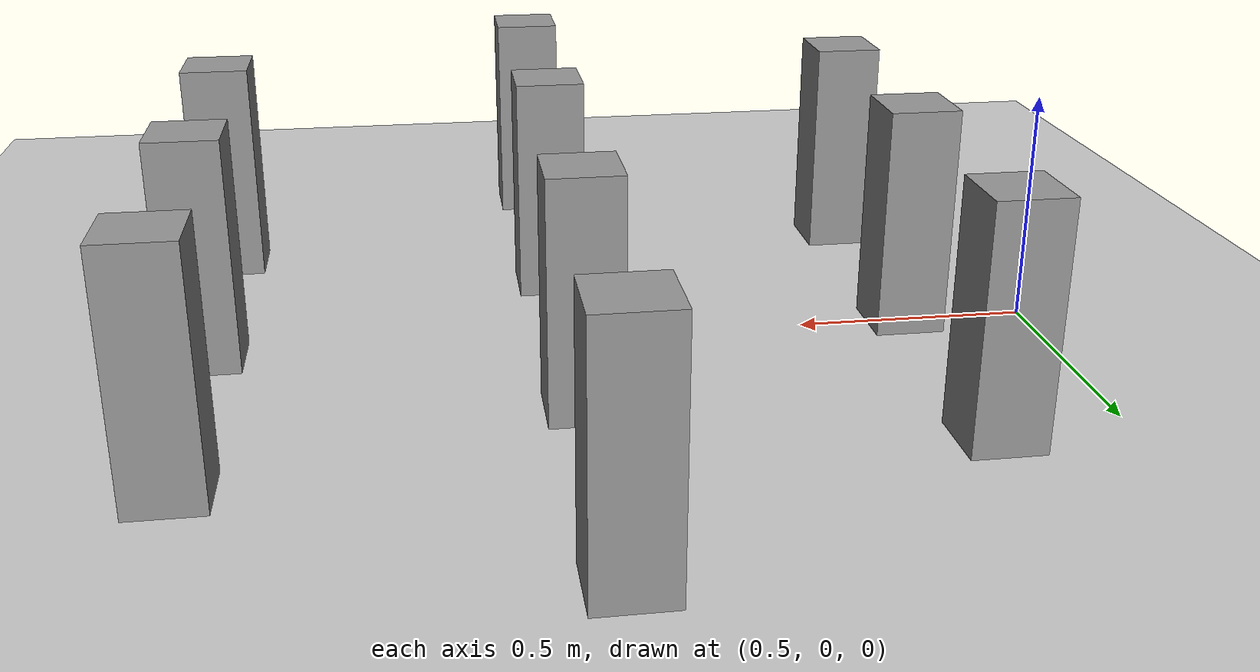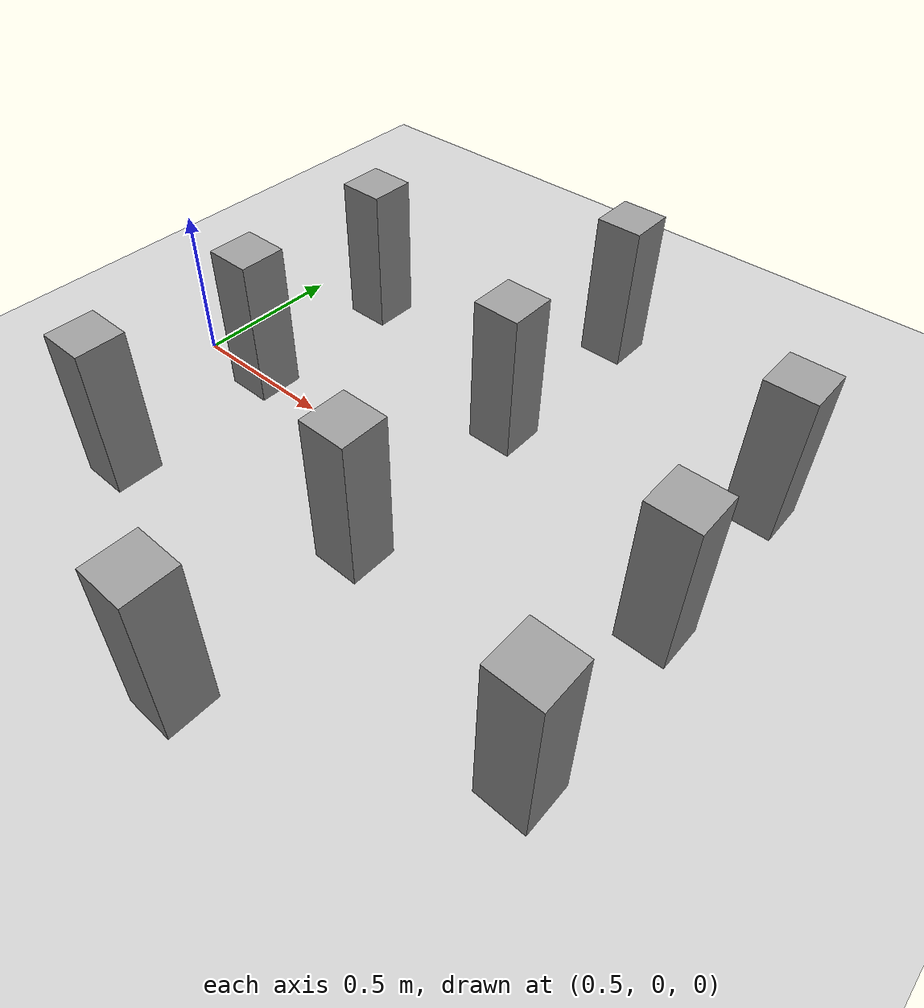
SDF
<sdf version="1.7">
 <world name="default">
  <light name="sun" type="directional">
   <pose>0 0 10 0 -0 0</pose>
   <diffuse>0.8 0.8 0.8 1</diffuse>
   <specular>0.2 0.2 0.2 1</specular>
   <attenuation>
    <range>1000</range>
    <constant>0.9</constant>
    <linear>0.01</linear>
    <quadratic>0.001</quadratic>
   </attenuation>
   <direction>-0.5 0.1 -0.9</direction>
   <spot><inner_angle>0</inner_angle><outer_angle>0</outer_angle><falloff>0</falloff></spot>
  </light>
  <model name="ground_plane">
   <static>1</static>
   <link name="link">
    <collision name="collision">
     <geometry><plane><normal>0 0 1</normal><size>100 100</size></plane></geometry>
     <surface><friction><ode><mu>100</mu><mu2>50</mu2></ode></friction></surface>
    </collision>
    <visual name="visual">
     <cast_shadows>0</cast_shadows>
     <geometry><plane><normal>0 0 1</normal><size>100 100</size></plane></geometry>
     <material>
      <script><uri>file://media/materials/scripts/gazebo.material</uri><name>Gazebo/Grey</name></script>
     </material>
    </visual>
   </link>
  </model>
  <gravity>0 0 -9.8</gravity>
  <magnetic_field>6e-06 2.3e-05 -4.2e-05</magnetic_field>
  <atmosphere type="adiabatic"/>
  <physics type="ode">
   <max_step_size>0.001</max_step_size>
   <real_time_factor>1</real_time_factor>
   <real_time_update_rate>1000</real_time_update_rate>
  </physics>
  <scene><ambient>0.4 0.4 0.4 1</ambient><background>0.7 0.7 0.7 1</background><shadows>1</shadows></scene>
  <spherical_coordinates>
   <surface_model>EARTH_WGS84</surface_model>
   <latitude_deg>0</latitude_deg>
   <longitude_deg>0</longitude_deg>
   <elevation>0</elevation>
   <heading_deg>0</heading_deg>
  </spherical_coordinates>
  <model name="Obstacles">
   <link name="link_1">
    <inertial>
     <mass>1</mass>
     <inertia>
      <ixx>0.166667</ixx>
      <ixy>0</ixy>
      <ixz>0</ixz>
      <iyy>0.166667</iyy>
      <iyz>0</iyz>
      <izz>0.166667</izz>
     </inertia>
     <pose>-0.3 0.175 0 0 -0 0</pose>
    </inertial>
    <pose>-1.14167 0.341667 0 0 -0 0</pose>
    <visual name="visual">
     <pose>-0.3 0.175 0 0 -0 0</pose>
     <geometry><box><size>0.15 0.15 0.5</size></box></geometry>
     <material>
      <lighting>1</lighting>
      <script><uri>file://media/materials/scripts/gazebo.material</uri><name>Gazebo/Grey</name></script>
      <shader type="pixel"><normal_map>__default__</normal_map></shader>
      <ambient>0.3 0.3 0.3 1</ambient>
      <diffuse>0.7 0.7 0.7 1</diffuse>
      <specular>0.01 0.01 0.01 1</specular>
      <emissive>0 0 0 1</emissive>
     </material>
    </visual>
    <collision name="collision">
     <max_contacts>0</max_contacts>
     <pose>-0.3 0.175 0 0 -0 0</pose>
     <geometry><box><size>0.15 0.15 0.5</size></box></geometry>
     <surface>
      <friction>
       <ode><mu>1</mu><mu2>1</mu2><fdir1>0 0 0</fdir1><slip1>0</slip1><slip2>0</slip2></ode>
       <torsional>
        <coefficient>1</coefficient>
        <patch_radius>0</patch_radius>
        <surface_radius>0</surface_radius>
        <use_patch_radius>1</use_patch_radius>
        <ode><slip>0</slip></ode>
       </torsional>
      </friction>
      <bounce><restitution_coefficient>0</restitution_coefficient><threshold>1e+06</threshold></bounce>
      <contact>
       <collide_without_contact>0</collide_without_contact>
       <collide_without_contact_bitmask>1</collide_without_contact_bitmask>
       <collide_bitmask>1</collide_bitmask>
       <ode>
        <soft_cfm>0</soft_cfm>
        <soft_erp>0.2</soft_erp>
        <kp>1e+13</kp>
        <kd>1</kd>
        <max_vel>0.01</max_vel>
        <min_depth>0</min_depth>
       </ode>
       <bullet>
        <split_impulse>1</split_impulse>
        <split_impulse_penetration_threshold>-0.01</split_impulse_penetration_threshold>
        <soft_cfm>0</soft_cfm>
        <soft_erp>0.2</soft_erp>
        <kp>1e+13</kp>
        <kd>1</kd>
       </bullet>
      </contact>
     </surface>
    </collision>
   </link>
   <link name="link_1_middle">
    <inertial>
     <mass>1</mass>
     <inertia>
      <ixx>0.166667</ixx>
      <ixy>0</ixy>
      <ixz>0</ixz>
      <iyy>0.166667</iyy>
      <iyz>0</iyz>
      <izz>0.166667</izz>
     </inertia>
     <pose>-0.3 -0.375 0 0 -0 0</pose>
    </inertial>
    <pose>-1.14167 0.341667 0 0 -0 0</pose>
    <visual name="visual">
     <pose>-0.3 -0.375 0 0 -0 0</pose>
     <geometry><box><size>0.15 0.15 0.5</size></box></geometry>
     <material>
      <lighting>1</lighting>
      <script><uri>file://media/materials/scripts/gazebo.material</uri><name>Gazebo/Grey</name></script>
      <shader type="pixel"><normal_map>__default__</normal_map></shader>
      <ambient>0.3 0.3 0.3 1</ambient>
      <diffuse>0.7 0.7 0.7 1</diffuse>
      <specular>0.01 0.01 0.01 1</specular>
      <emissive>0 0 0 1</emissive>
     </material>
    </visual>
    <collision name="collision">
     <max_contacts>0</max_contacts>
     <pose>-0.3 -0.375 0 0 -0 0</pose>
     <geometry><box><size>0.15 0.15 0.5</size></box></geometry>
     <surface>
      <friction>
       <ode><mu>1</mu><mu2>1</mu2><fdir1>0 0 0</fdir1><slip1>0</slip1><slip2>0</slip2></ode>
       <torsional>
        <coefficient>1</coefficient>
        <patch_radius>0</patch_radius>
        <surface_radius>0</surface_radius>
        <use_patch_radius>1</use_patch_radius>
        <ode><slip>0</slip></ode>
       </torsional>
      </friction>
      <bounce><restitution_coefficient>0</restitution_coefficient><threshold>1e+06</threshold></bounce>
      <contact>
       <collide_without_contact>0</collide_without_contact>
       <collide_without_contact_bitmask>1</collide_without_contact_bitmask>
       <collide_bitmask>1</collide_bitmask>
       <ode>
        <soft_cfm>0</soft_cfm>
        <soft_erp>0.2</soft_erp>
        <kp>1e+13</kp>
        <kd>1</kd>
        <max_vel>0.01</max_vel>
        <min_depth>0</min_depth>
       </ode>
       <bullet>
        <split_impulse>1</split_impulse>
        <split_impulse_penetration_threshold>-0.01</split_impulse_penetration_threshold>
        <soft_cfm>0</soft_cfm>
        <soft_erp>0.2</soft_erp>
        <kp>1e+13</kp>
        <kd>1</kd>
       </bullet>
      </contact>
     </surface>
    </collision>
   </link>
   <link name="link_1_low">
    <inertial>
     <mass>1</mass>
     <inertia>
      <ixx>0.166667</ixx>
      <ixy>0</ixy>
      <ixz>0</ixz>
      <iyy>0.166667</iyy>
      <iyz>0</iyz>
      <izz>0.166667</izz>
     </inertia>
     <pose>-0.3 -0.925 0 0 -0 0</pose>
    </inertial>
    <pose>-1.14167 0.341667 0 0 -0 0</pose>
    <visual name="visual">
     <pose>-0.3 -0.925 0 0 -0 0</pose>
     <geometry><box><size>0.15 0.15 0.5</size></box></geometry>
     <material>
      <lighting>1</lighting>
      <script><uri>file://media/materials/scripts/gazebo.material</uri><name>Gazebo/Grey</name></script>
      <shader type="pixel"><normal_map>__default__</normal_map></shader>
      <ambient>0.3 0.3 0.3 1</ambient>
      <diffuse>0.7 0.7 0.7 1</diffuse>
      <specular>0.01 0.01 0.01 1</specular>
      <emissive>0 0 0 1</emissive>
     </material>
    </visual>
    <collision name="collision">
     <max_contacts>0</max_contacts>
     <pose>-0.3 -0.925 0 0 -0 0</pose>
     <geometry><box><size>0.15 0.15 0.5</size></box></geometry>
     <surface>
      <friction>
       <ode><mu>1</mu><mu2>1</mu2><fdir1>0 0 0</fdir1><slip1>0</slip1><slip2>0</slip2></ode>
       <torsional>
        <coefficient>1</coefficient>
        <patch_radius>0</patch_radius>
        <surface_radius>0</surface_radius>
        <use_patch_radius>1</use_patch_radius>
        <ode><slip>0</slip></ode>
       </torsional>
      </friction>
      <bounce><restitution_coefficient>0</restitution_coefficient><threshold>1e+06</threshold></bounce>
      <contact>
       <collide_without_contact>0</collide_without_contact>
       <collide_without_contact_bitmask>1</collide_without_contact_bitmask>
       <collide_bitmask>1</collide_bitmask>
       <ode>
        <soft_cfm>0</soft_cfm>
        <soft_erp>0.2</soft_erp>
        <kp>1e+13</kp>
        <kd>1</kd>
        <max_vel>0.01</max_vel>
        <min_depth>0</min_depth>
       </ode>
       <bullet>
        <split_impulse>1</split_impulse>
        <split_impulse_penetration_threshold>-0.01</split_impulse_penetration_threshold>
        <soft_cfm>0</soft_cfm>
        <soft_erp>0.2</soft_erp>
        <kp>1e+13</kp>
        <kd>1</kd>
       </bullet>
      </contact>
     </surface>
    </collision>
   </link>
   <link name="link_2">
    <inertial>
     <mass>1</mass>
     <inertia>
      <ixx>0.166667</ixx>
      <ixy>0</ixy>
      <ixz>0</ixz>
      <iyy>0.166667</iyy>
      <iyz>0</iyz>
      <izz>0.166667</izz>
     </inertia>
     <pose>1.2 0.175 0 0 -0 0</pose>
    </inertial>
    <pose>-1.14167 0.341667 0 0 -0 0</pose>
    <visual name="visual">
     <pose>1.2 0.175 0 0 -0 0</pose>
     <geometry><box><size>0.15 0.15 0.5</size></box></geometry>
     <material>
      <lighting>1</lighting>
      <script><uri>file://media/materials/scripts/gazebo.material</uri><name>Gazebo/Grey</name></script>
      <shader type="pixel"><normal_map>__default__</normal_map></shader>
      <ambient>0.3 0.3 0.3 1</ambient>
      <diffuse>0.7 0.7 0.7 1</diffuse>
      <specular>0.01 0.01 0.01 1</specular>
      <emissive>0 0 0 1</emissive>
     </material>
    </visual>
    <collision name="collision">
     <max_contacts>0</max_contacts>
     <pose>1.2 0.175 0 0 -0 0</pose>
     <geometry><box><size>0.15 0.15 0.5</size></box></geometry>
     <surface>
      <friction>
       <ode><mu>1</mu><mu2>1</mu2><fdir1>0 0 0</fdir1><slip1>0</slip1><slip2>0</slip2></ode>
       <torsional>
        <coefficient>1</coefficient>
        <patch_radius>0</patch_radius>
        <surface_radius>0</surface_radius>
        <use_patch_radius>1</use_patch_radius>
        <ode><slip>0</slip></ode>
       </torsional>
      </friction>
      <bounce><restitution_coefficient>0</restitution_coefficient><threshold>1e+06</threshold></bounce>
      <contact>
       <collide_without_contact>0</collide_without_contact>
       <collide_without_contact_bitmask>1</collide_without_contact_bitmask>
       <collide_bitmask>1</collide_bitmask>
       <ode>
        <soft_cfm>0</soft_cfm>
        <soft_erp>0.2</soft_erp>
        <kp>1e+13</kp>
        <kd>1</kd>
        <max_vel>0.01</max_vel>
        <min_depth>0</min_depth>
       </ode>
       <bullet>
        <split_impulse>1</split_impulse>
        <split_impulse_penetration_threshold>-0.01</split_impulse_penetration_threshold>
        <soft_cfm>0</soft_cfm>
        <soft_erp>0.2</soft_erp>
        <kp>1e+13</kp>
        <kd>1</kd>
       </bullet>
      </contact>
     </surface>
    </collision>
   </link>
   <link name="link_2_middle">
    <inertial>
     <mass>1</mass>
     <inertia>
      <ixx>0.166667</ixx>
      <ixy>0</ixy>
      <ixz>0</ixz>
      <iyy>0.166667</iyy>
      <iyz>0</iyz>
      <izz>0.166667</izz>
     </inertia>
     <pose>1.2 -0.375 0 0 -0 0</pose>
    </inertial>
    <pose>-1.14167 0.341667 0 0 -0 0</pose>
    <visual name="visual">
     <pose>1.2 -0.375 0 0 -0 0</pose>
     <geometry><box><size>0.15 0.15 0.5</size></box></geometry>
     <material>
      <lighting>1</lighting>
      <script><uri>file://media/materials/scripts/gazebo.material</uri><name>Gazebo/Grey</name></script>
      <shader type="pixel"><normal_map>__default__</normal_map></shader>
      <ambient>0.3 0.3 0.3 1</ambient>
      <diffuse>0.7 0.7 0.7 1</diffuse>
      <specular>0.01 0.01 0.01 1</specular>
      <emissive>0 0 0 1</emissive>
     </material>
    </visual>
    <collision name="collision">
     <max_contacts>0</max_contacts>
     <pose>1.2 -0.375 0 0 -0 0</pose>
     <geometry><box><size>0.15 0.15 0.5</size></box></geometry>
     <surface>
      <friction>
       <ode><mu>1</mu><mu2>1</mu2><fdir1>0 0 0</fdir1><slip1>0</slip1><slip2>0</slip2></ode>
       <torsional>
        <coefficient>1</coefficient>
        <patch_radius>0</patch_radius>
        <surface_radius>0</surface_radius>
        <use_patch_radius>1</use_patch_radius>
        <ode><slip>0</slip></ode>
       </torsional>
      </friction>
      <bounce><restitution_coefficient>0</restitution_coefficient><threshold>1e+06</threshold></bounce>
      <contact>
       <collide_without_contact>0</collide_without_contact>
       <collide_without_contact_bitmask>1</collide_without_contact_bitmask>
       <collide_bitmask>1</collide_bitmask>
       <ode>
        <soft_cfm>0</soft_cfm>
        <soft_erp>0.2</soft_erp>
        <kp>1e+13</kp>
        <kd>1</kd>
        <max_vel>0.01</max_vel>
        <min_depth>0</min_depth>
       </ode>
       <bullet>
        <split_impulse>1</split_impulse>
        <split_impulse_penetration_threshold>-0.01</split_impulse_penetration_threshold>
        <soft_cfm>0</soft_cfm>
        <soft_erp>0.2</soft_erp>
        <kp>1e+13</kp>
        <kd>1</kd>
       </bullet>
      </contact>
     </surface>
    </collision>
   </link>
   <link name="link_2_low">
    <inertial>
     <mass>1</mass>
     <inertia>
      <ixx>0.166667</ixx>
      <ixy>0</ixy>
      <ixz>0</ixz>
      <iyy>0.166667</iyy>
      <iyz>0</iyz>
      <izz>0.166667</izz>
     </inertia>
     <pose>1.2 -0.925 0 0 -0 0</pose>
    </inertial>
    <pose>-1.14167 0.341667 0 0 -0 0</pose>
    <visual name="visual">
     <pose>1.2 -0.925 0 0 -0 0</pose>
     <geometry><box><size>0.15 0.15 0.5</size></box></geometry>
     <material>
      <lighting>1</lighting>
      <script><uri>file://media/materials/scripts/gazebo.material</uri><name>Gazebo/Grey</name></script>
      <shader type="pixel"><normal_map>__default__</normal_map></shader>
      <ambient>0.3 0.3 0.3 1</ambient>
      <diffuse>0.7 0.7 0.7 1</diffuse>
      <specular>0.01 0.01 0.01 1</specular>
      <emissive>0 0 0 1</emissive>
     </material>
    </visual>
    <collision name="collision">
     <max_contacts>0</max_contacts>
     <pose>1.2 -0.925 0 0 -0 0</pose>
     <geometry><box><size>0.15 0.15 0.5</size></box></geometry>
     <surface>
      <friction>
       <ode><mu>1</mu><mu2>1</mu2><fdir1>0 0 0</fdir1><slip1>0</slip1><slip2>0</slip2></ode>
       <torsional>
        <coefficient>1</coefficient>
        <patch_radius>0</patch_radius>
        <surface_radius>0</surface_radius>
        <use_patch_radius>1</use_patch_radius>
        <ode><slip>0</slip></ode>
       </torsional>
      </friction>
      <bounce><restitution_coefficient>0</restitution_coefficient><threshold>1e+06</threshold></bounce>
      <contact>
       <collide_without_contact>0</collide_without_contact>
       <collide_without_contact_bitmask>1</collide_without_contact_bitmask>
       <collide_bitmask>1</collide_bitmask>
       <ode>
        <soft_cfm>0</soft_cfm>
        <soft_erp>0.2</soft_erp>
        <kp>1e+13</kp>
        <kd>1</kd>
        <max_vel>0.01</max_vel>
        <min_depth>0</min_depth>
       </ode>
       <bullet>
        <split_impulse>1</split_impulse>
        <split_impulse_penetration_threshold>-0.01</split_impulse_penetration_threshold>
        <soft_cfm>0</soft_cfm>
        <soft_erp>0.2</soft_erp>
        <kp>1e+13</kp>
        <kd>1</kd>
       </bullet>
      </contact>
     </surface>
    </collision>
   </link>
   <link name="link_31">
    <inertial>
     <mass>1</mass>
     <inertia>
      <ixx>0.166667</ixx>
      <ixy>0</ixy>
      <ixz>0</ixz>
      <iyy>0.166667</iyy>
      <iyz>0</iyz>
      <izz>0.166667</izz>
     </inertia>
     <pose>0.45 0.55 0 0 -0 0</pose>
    </inertial>
    <pose>-1.14167 0.341667 0 0 -0 0</pose>
    <visual name="visual">
     <pose>0.45 0.55 0 0 -0 0</pose>
     <geometry><box><size>0.15 0.15 0.5</size></box></geometry>
     <material>
      <lighting>1</lighting>
      <script><uri>file://media/materials/scripts/gazebo.material</uri><name>Gazebo/Grey</name></script>
      <shader type="pixel"><normal_map>__default__</normal_map></shader>
      <ambient>0.3 0.3 0.3 1</ambient>
      <diffuse>0.7 0.7 0.7 1</diffuse>
      <specular>0.01 0.01 0.01 1</specular>
      <emissive>0 0 0 1</emissive>
     </material>
    </visual>
    <collision name="collision">
     <max_contacts>0</max_contacts>
     <pose>0.45 0.55 0 0 -0 0</pose>
     <geometry><box><size>0.15 0.15 0.5</size></box></geometry>
     <surface>
      <friction>
       <ode><mu>1</mu><mu2>1</mu2><fdir1>0 0 0</fdir1><slip1>0</slip1><slip2>0</slip2></ode>
       <torsional>
        <coefficient>1</coefficient>
        <patch_radius>0</patch_radius>
        <surface_radius>0</surface_radius>
        <use_patch_radius>1</use_patch_radius>
        <ode><slip>0</slip></ode>
       </torsional>
      </friction>
      <bounce><restitution_coefficient>0</restitution_coefficient><threshold>1e+06</threshold></bounce>
      <contact>
       <collide_without_contact>0</collide_without_contact>
       <collide_without_contact_bitmask>1</collide_without_contact_bitmask>
       <collide_bitmask>1</collide_bitmask>
       <ode>
        <soft_cfm>0</soft_cfm>
        <soft_erp>0.2</soft_erp>
        <kp>1e+13</kp>
        <kd>1</kd>
        <max_vel>0.01</max_vel>
        <min_depth>0</min_depth>
       </ode>
       <bullet>
        <split_impulse>1</split_impulse>
        <split_impulse_penetration_threshold>-0.01</split_impulse_penetration_threshold>
        <soft_cfm>0</soft_cfm>
        <soft_erp>0.2</soft_erp>
        <kp>1e+13</kp>
        <kd>1</kd>
       </bullet>
      </contact>
     </surface>
    </collision>
   </link>
   <link name="link_32">
    <inertial>
     <mass>1</mass>
     <inertia>
      <ixx>0.166667</ixx>
      <ixy>0</ixy>
      <ixz>0</ixz>
      <iyy>0.166667</iyy>
      <iyz>0</iyz>
      <izz>0.166667</izz>
     </inertia>
     <pose>0.45 -0.05 0 0 -0 0</pose>
    </inertial>
    <pose>-1.14167 0.341667 0 0 -0 0</pose>
    <visual name="visual">
     <pose>0.45 -0.05 0 0 -0 0</pose>
     <geometry><box><size>0.15 0.15 0.5</size></box></geometry>
     <material>
      <lighting>1</lighting>
      <script><uri>file://media/materials/scripts/gazebo.material</uri><name>Gazebo/Grey</name></script>
      <shader type="pixel"><normal_map>__default__</normal_map></shader>
      <ambient>0.3 0.3 0.3 1</ambient>
      <diffuse>0.7 0.7 0.7 1</diffuse>
      <specular>0.01 0.01 0.01 1</specular>
      <emissive>0 0 0 1</emissive>
     </material>
    </visual>
    <collision name="collision">
     <max_contacts>0</max_contacts>
     <pose>0.45 -0.05 0 0 -0 0</pose>
     <geometry><box><size>0.15 0.15 0.5</size></box></geometry>
     <surface>
      <friction>
       <ode><mu>1</mu><mu2>1</mu2><fdir1>0 0 0</fdir1><slip1>0</slip1><slip2>0</slip2></ode>
       <torsional>
        <coefficient>1</coefficient>
        <patch_radius>0</patch_radius>
        <surface_radius>0</surface_radius>
        <use_patch_radius>1</use_patch_radius>
        <ode><slip>0</slip></ode>
       </torsional>
      </friction>
      <bounce><restitution_coefficient>0</restitution_coefficient><threshold>1e+06</threshold></bounce>
      <contact>
       <collide_without_contact>0</collide_without_contact>
       <collide_without_contact_bitmask>1</collide_without_contact_bitmask>
       <collide_bitmask>1</collide_bitmask>
       <ode>
        <soft_cfm>0</soft_cfm>
        <soft_erp>0.2</soft_erp>
        <kp>1e+13</kp>
        <kd>1</kd>
        <max_vel>0.01</max_vel>
        <min_depth>0</min_depth>
       </ode>
       <bullet>
        <split_impulse>1</split_impulse>
        <split_impulse_penetration_threshold>-0.01</split_impulse_penetration_threshold>
        <soft_cfm>0</soft_cfm>
        <soft_erp>0.2</soft_erp>
        <kp>1e+13</kp>
        <kd>1</kd>
       </bullet>
      </contact>
     </surface>
    </collision>
   </link>
   <link name="link_33">
    <inertial>
     <mass>1</mass>
     <inertia>
      <ixx>0.166667</ixx>
      <ixy>0</ixy>
      <ixz>0</ixz>
      <iyy>0.166667</iyy>
      <iyz>0</iyz>
      <izz>0.166667</izz>
     </inertia>
     <pose>0.45 -0.7 0 0 -0 0</pose>
    </inertial>
    <pose>-1.14167 0.341667 0 0 -0 0</pose>
    <visual name="visual">
     <pose>0.45 -0.7 0 0 -0 0</pose>
     <geometry><box><size>0.15 0.15 0.5</size></box></geometry>
     <material>
      <lighting>1</lighting>
      <script><uri>file://media/materials/scripts/gazebo.material</uri><name>Gazebo/Grey</name></script>
      <shader type="pixel"><normal_map>__default__</normal_map></shader>
      <ambient>0.3 0.3 0.3 1</ambient>
      <diffuse>0.7 0.7 0.7 1</diffuse>
      <specular>0.01 0.01 0.01 1</specular>
      <emissive>0 0 0 1</emissive>
     </material>
    </visual>
    <collision name="collision">
     <max_contacts>0</max_contacts>
     <pose>0.45 -0.7 0 0 -0 0</pose>
     <geometry><box><size>0.15 0.15 0.5</size></box></geometry>
     <surface>
      <friction>
       <ode><mu>1</mu><mu2>1</mu2><fdir1>0 0 0</fdir1><slip1>0</slip1><slip2>0</slip2></ode>
       <torsional>
        <coefficient>1</coefficient>
        <patch_radius>0</patch_radius>
        <surface_radius>0</surface_radius>
        <use_patch_radius>1</use_patch_radius>
        <ode><slip>0</slip></ode>
       </torsional>
      </friction>
      <bounce><restitution_coefficient>0</restitution_coefficient><threshold>1e+06</threshold></bounce>
      <contact>
       <collide_without_contact>0</collide_without_contact>
       <collide_without_contact_bitmask>1</collide_without_contact_bitmask>
       <collide_bitmask>1</collide_bitmask>
       <ode>
        <soft_cfm>0</soft_cfm>
        <soft_erp>0.2</soft_erp>
        <kp>1e+13</kp>
        <kd>1</kd>
        <max_vel>0.01</max_vel>
        <min_depth>0</min_depth>
       </ode>
       <bullet>
        <split_impulse>1</split_impulse>
        <split_impulse_penetration_threshold>-0.01</split_impulse_penetration_threshold>
        <soft_cfm>0</soft_cfm>
        <soft_erp>0.2</soft_erp>
        <kp>1e+13</kp>
        <kd>1</kd>
       </bullet>
      </contact>
     </surface>
    </collision>
   </link>
   <link name="link_34">
    <inertial>
     <mass>1</mass>
     <inertia>
      <ixx>0.166667</ixx>
      <ixy>0</ixy>
      <ixz>0</ixz>
      <iyy>0.166667</iyy>
      <iyz>0</iyz>
      <izz>0.166667</izz>
     </inertia>
     <pose>0.45 -1.3 0 0 -0 0</pose>
    </inertial>
    <pose>-1.14167 0.341667 0 0 -0 0</pose>
    <visual name="visual">
     <pose>0.45 -1.3 0 0 -0 0</pose>
     <geometry><box><size>0.15 0.15 0.5</size></box></geometry>
     <material>
      <lighting>1</lighting>
      <script><uri>file://media/materials/scripts/gazebo.material</uri><name>Gazebo/Grey</name></script>
      <shader type="pixel"><normal_map>__default__</normal_map></shader>
      <ambient>0.3 0.3 0.3 1</ambient>
      <diffuse>0.7 0.7 0.7 1</diffuse>
      <specular>0.01 0.01 0.01 1</specular>
      <emissive>0 0 0 1</emissive>
     </material>
    </visual>
    <collision name="collision">
     <max_contacts>0</max_contacts>
     <pose>0.45 -1.3 0 0 -0 0</pose>
     <geometry><box><size>0.15 0.15 0.5</size></box></geometry>
     <surface>
      <friction>
       <ode><mu>1</mu><mu2>1</mu2><fdir1>0 0 0</fdir1><slip1>0</slip1><slip2>0</slip2></ode>
       <torsional>
        <coefficient>1</coefficient>
        <patch_radius>0</patch_radius>
        <surface_radius>0</surface_radius>
        <use_patch_radius>1</use_patch_radius>
        <ode><slip>0</slip></ode>
       </torsional>
      </friction>
      <bounce><restitution_coefficient>0</restitution_coefficient><threshold>1e+06</threshold></bounce>
      <contact>
       <collide_without_contact>0</collide_without_contact>
       <collide_without_contact_bitmask>1</collide_without_contact_bitmask>
       <collide_bitmask>1</collide_bitmask>
       <ode>
        <soft_cfm>0</soft_cfm>
        <soft_erp>0.2</soft_erp>
        <kp>1e+13</kp>
        <kd>1</kd>
        <max_vel>0.01</max_vel>
        <min_depth>0</min_depth>
       </ode>
       <bullet>
        <split_impulse>1</split_impulse>
        <split_impulse_penetration_threshold>-0.01</split_impulse_penetration_threshold>
        <soft_cfm>0</soft_cfm>
        <soft_erp>0.2</soft_erp>
        <kp>1e+13</kp>
        <kd>1</kd>
       </bullet>
      </contact>
     </surface>
    </collision>
   </link>
   <static>0</static>
   <pose>2.21667 0.033333 0.25 0 -0 0</pose>
  </model>
 </world>
</sdf>
